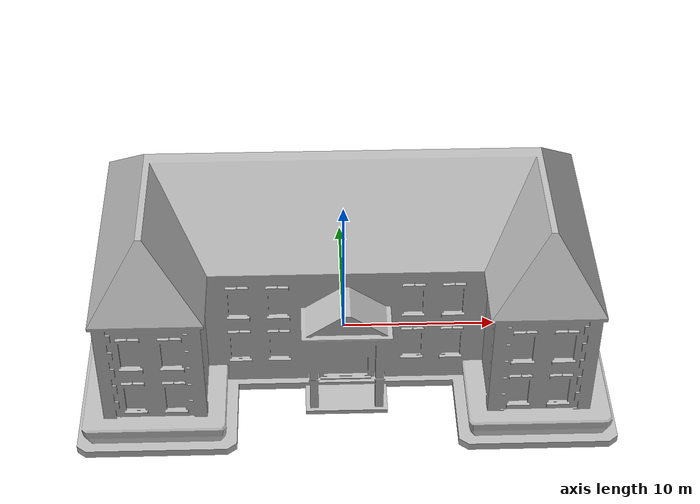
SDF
<?xml version="1.0" ?>
<sdf version="1.6">
  <model name="school">
    <static>true</static>
    <link name="link">
      <collision name="collision">
        <geometry>
          <mesh>
            <uri>model://school/meshes/school.dae</uri>
          </mesh>
        </geometry>
      </collision>
      <visual name="visual">
        <geometry>
          <mesh>
            <uri>model://school/meshes/school.dae</uri>
          </mesh>
        </geometry>
      </visual>
    </link>
  </model>
</sdf>
